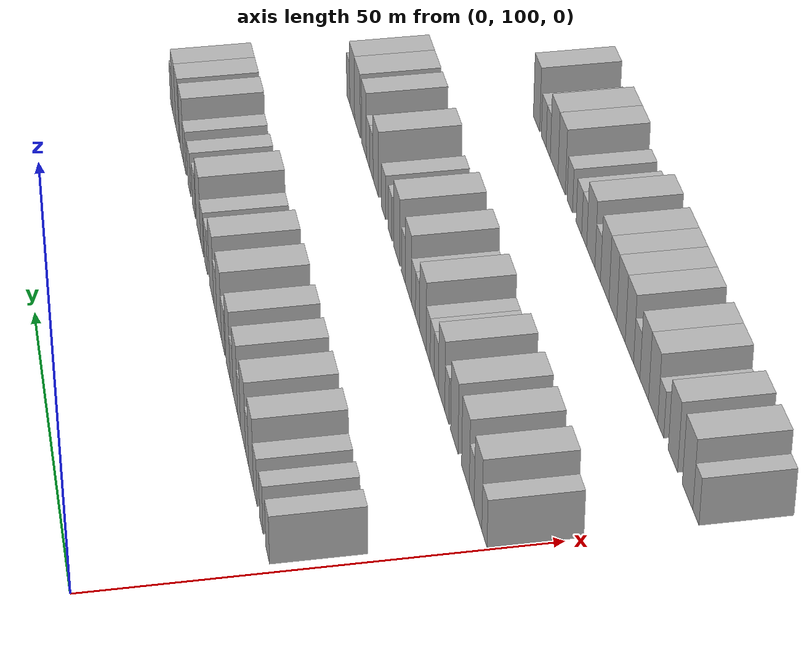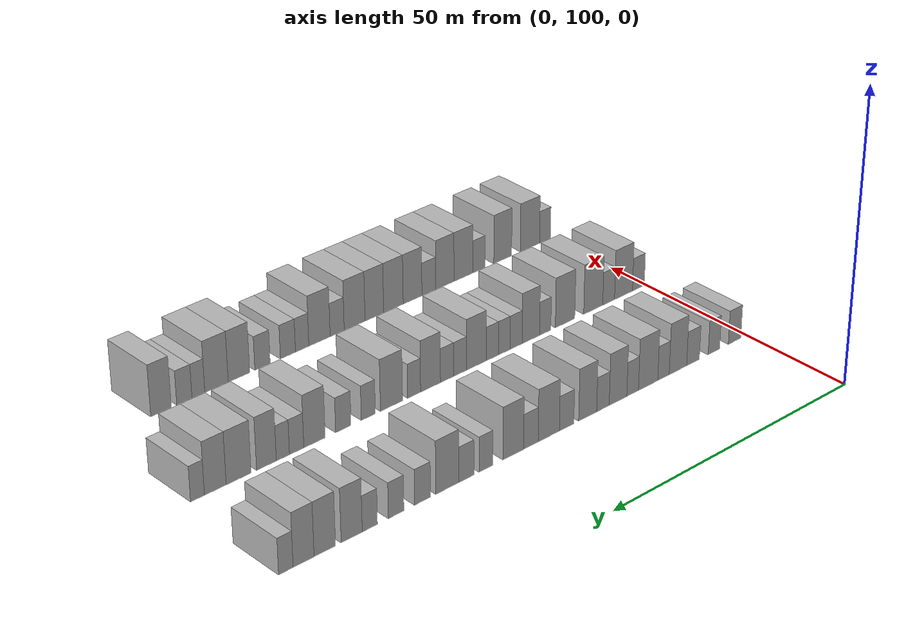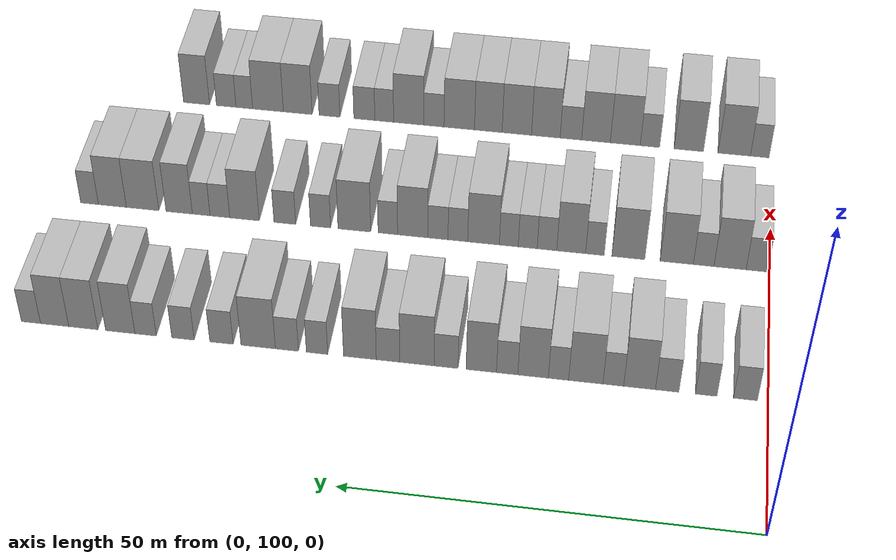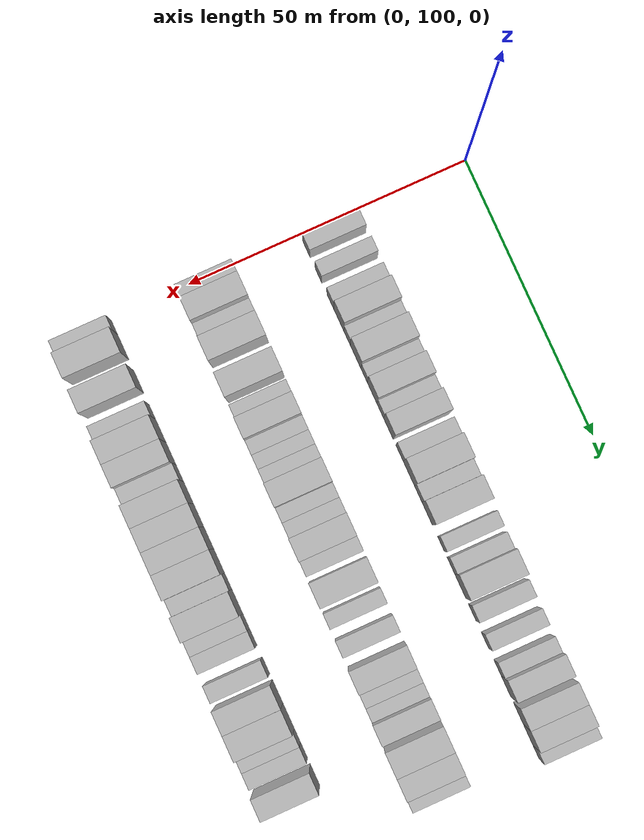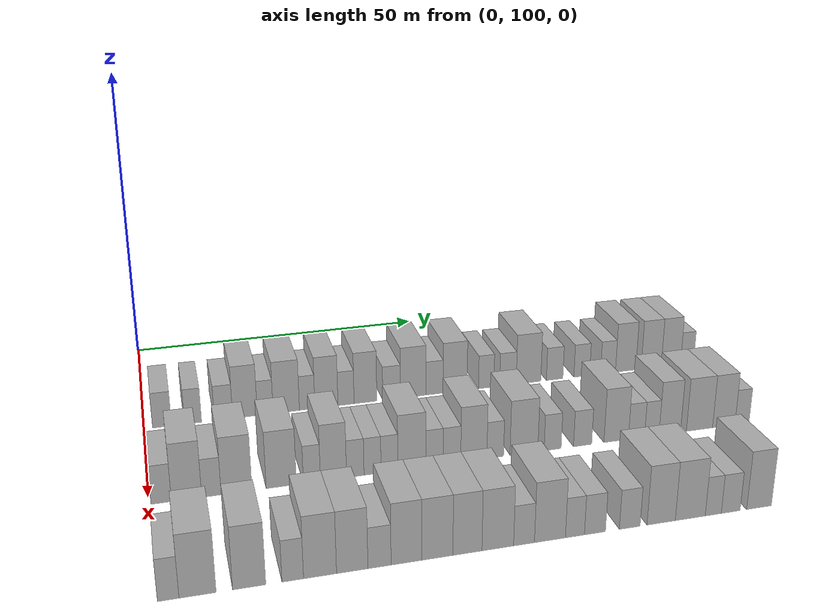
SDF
<sdf version="1.6">
 <world name="default">
  <model name="building_113">
   <static>1</static>
   <pose>25.0000 102.8025 0 0.000000 0.000000 0.000000</pose>
   <link name="link">
    <pose>0 0 3.00 0 0 0</pose>
    <collision name="collision"><geometry><box><size>10.0000 2.9003 6.0000</size></box></geometry></collision>
    <visual name="visual">
     <cast_shadows>0</cast_shadows>
     <geometry><box><size>10.0000 2.9003 6.0000</size></box></geometry>
     <material>
      <script>
       <uri>model://HANNAS_wall/materials/scripts</uri>
       <uri>model://HANNAS_wall/materials/textures</uri>
       <name>vrc/HANNAS_wall</name>
      </script>
     </material>
    </visual>
   </link>
  </model>
  <model name="building_114">
   <static>1</static>
   <pose>25.0000 107.5711 0 0.000000 0.000000 0.000000</pose>
   <link name="link">
    <pose>0 0 3.00 0 0 0</pose>
    <collision name="collision"><geometry><box><size>10.0000 2.6370 6.0000</size></box></geometry></collision>
    <visual name="visual">
     <cast_shadows>0</cast_shadows>
     <geometry><box><size>10.0000 2.6370 6.0000</size></box></geometry>
     <material>
      <script>
       <uri>model://HANNAS_wall/materials/scripts</uri>
       <uri>model://HANNAS_wall/materials/textures</uri>
       <name>vrc/HANNAS_wall</name>
      </script>
     </material>
    </visual>
   </link>
  </model>
  <model name="building_115">
   <static>1</static>
   <pose>25.0000 112.3245 0 0.000000 0.000000 0.000000</pose>
   <link name="link">
    <pose>0 0 3.00 0 0 0</pose>
    <collision name="collision"><geometry><box><size>10.0000 2.8697 6.0000</size></box></geometry></collision>
    <visual name="visual">
     <cast_shadows>0</cast_shadows>
     <geometry><box><size>10.0000 2.8697 6.0000</size></box></geometry>
     <material>
      <script>
       <uri>model://HANNAS_wall/materials/scripts</uri>
       <uri>model://HANNAS_wall/materials/textures</uri>
       <name>vrc/HANNAS_wall</name>
      </script>
     </material>
    </visual>
   </link>
  </model>
  <model name="building_116">
   <static>1</static>
   <pose>25.0000 115.7077 0 0.000000 0.000000 0.000000</pose>
   <link name="link">
    <pose>0 0 4.50 0 0 0</pose>
    <collision name="collision"><geometry><box><size>10.0000 3.8967 9.0000</size></box></geometry></collision>
    <visual name="visual">
     <cast_shadows>0</cast_shadows>
     <geometry><box><size>10.0000 3.8967 9.0000</size></box></geometry>
     <material>
      <script>
       <uri>model://HANNAS_wall/materials/scripts</uri>
       <uri>model://HANNAS_wall/materials/textures</uri>
       <name>vrc/HANNAS_wall</name>
      </script>
     </material>
    </visual>
   </link>
  </model>
  <model name="building_117">
   <static>1</static>
   <pose>25.0000 118.9206 0 0.000000 0.000000 0.000000</pose>
   <link name="link">
    <pose>0 0 3.00 0 0 0</pose>
    <collision name="collision"><geometry><box><size>10.0000 2.5292 6.0000</size></box></geometry></collision>
    <visual name="visual">
     <cast_shadows>0</cast_shadows>
     <geometry><box><size>10.0000 2.5292 6.0000</size></box></geometry>
     <material>
      <script>
       <uri>model://HANNAS_wall/materials/scripts</uri>
       <uri>model://HANNAS_wall/materials/textures</uri>
       <name>vrc/HANNAS_wall</name>
      </script>
     </material>
    </visual>
   </link>
  </model>
  <model name="building_118">
   <static>1</static>
   <pose>25.0000 122.2990 0 0.000000 0.000000 0.000000</pose>
   <link name="link">
    <pose>0 0 4.50 0 0 0</pose>
    <collision name="collision"><geometry><box><size>10.0000 4.2275 9.0000</size></box></geometry></collision>
    <visual name="visual">
     <cast_shadows>0</cast_shadows>
     <geometry><box><size>10.0000 4.2275 9.0000</size></box></geometry>
     <material>
      <script>
       <uri>model://HANNAS_wall/materials/scripts</uri>
       <uri>model://HANNAS_wall/materials/textures</uri>
       <name>vrc/HANNAS_wall</name>
      </script>
     </material>
    </visual>
   </link>
  </model>
  <model name="building_119">
   <static>1</static>
   <pose>25.0000 125.6656 0 0.000000 0.000000 0.000000</pose>
   <link name="link">
    <pose>0 0 3.00 0 0 0</pose>
    <collision name="collision"><geometry><box><size>10.0000 2.5059 6.0000</size></box></geometry></collision>
    <visual name="visual">
     <cast_shadows>0</cast_shadows>
     <geometry><box><size>10.0000 2.5059 6.0000</size></box></geometry>
     <material>
      <script>
       <uri>model://HANNAS_wall/materials/scripts</uri>
       <uri>model://HANNAS_wall/materials/textures</uri>
       <name>vrc/HANNAS_wall</name>
      </script>
     </material>
    </visual>
   </link>
  </model>
  <model name="building_120">
   <static>1</static>
   <pose>25.0000 128.8094 0 0.000000 0.000000 0.000000</pose>
   <link name="link">
    <pose>0 0 4.50 0 0 0</pose>
    <collision name="collision"><geometry><box><size>10.0000 3.7816 9.0000</size></box></geometry></collision>
    <visual name="visual">
     <cast_shadows>0</cast_shadows>
     <geometry><box><size>10.0000 3.7816 9.0000</size></box></geometry>
     <material>
      <script>
       <uri>model://HANNAS_wall/materials/scripts</uri>
       <uri>model://HANNAS_wall/materials/textures</uri>
       <name>vrc/HANNAS_wall</name>
      </script>
     </material>
    </visual>
   </link>
  </model>
  <model name="building_121">
   <static>1</static>
   <pose>25.0000 132.0284 0 0.000000 0.000000 0.000000</pose>
   <link name="link">
    <pose>0 0 3.00 0 0 0</pose>
    <collision name="collision"><geometry><box><size>10.0000 2.6565 6.0000</size></box></geometry></collision>
    <visual name="visual">
     <cast_shadows>0</cast_shadows>
     <geometry><box><size>10.0000 2.6565 6.0000</size></box></geometry>
     <material>
      <script>
       <uri>model://HANNAS_wall/materials/scripts</uri>
       <uri>model://HANNAS_wall/materials/textures</uri>
       <name>vrc/HANNAS_wall</name>
      </script>
     </material>
    </visual>
   </link>
  </model>
  <model name="building_122">
   <static>1</static>
   <pose>25.0000 135.2469 0 0.000000 0.000000 0.000000</pose>
   <link name="link">
    <pose>0 0 4.50 0 0 0</pose>
    <collision name="collision"><geometry><box><size>10.0000 3.7803 9.0000</size></box></geometry></collision>
    <visual name="visual">
     <cast_shadows>0</cast_shadows>
     <geometry><box><size>10.0000 3.7803 9.0000</size></box></geometry>
     <material>
      <script>
       <uri>model://HANNAS_wall/materials/scripts</uri>
       <uri>model://HANNAS_wall/materials/textures</uri>
       <name>vrc/HANNAS_wall</name>
      </script>
     </material>
    </visual>
   </link>
  </model>
  <model name="building_123">
   <static>1</static>
   <pose>25.0000 139.6315 0 0.000000 0.000000 0.000000</pose>
   <link name="link">
    <pose>0 0 3.00 0 0 0</pose>
    <collision name="collision"><geometry><box><size>10.0000 2.9890 6.0000</size></box></geometry></collision>
    <visual name="visual">
     <cast_shadows>0</cast_shadows>
     <geometry><box><size>10.0000 2.9890 6.0000</size></box></geometry>
     <material>
      <script>
       <uri>model://HANNAS_wall/materials/scripts</uri>
       <uri>model://HANNAS_wall/materials/textures</uri>
       <name>vrc/HANNAS_wall</name>
      </script>
     </material>
    </visual>
   </link>
  </model>
  <model name="building_124">
   <static>1</static>
   <pose>25.0000 143.2917 0 0.000000 0.000000 0.000000</pose>
   <link name="link">
    <pose>0 0 4.50 0 0 0</pose>
    <collision name="collision"><geometry><box><size>10.0000 4.3314 9.0000</size></box></geometry></collision>
    <visual name="visual">
     <cast_shadows>0</cast_shadows>
     <geometry><box><size>10.0000 4.3314 9.0000</size></box></geometry>
     <material>
      <script>
       <uri>model://HANNAS_wall/materials/scripts</uri>
       <uri>model://HANNAS_wall/materials/textures</uri>
       <name>vrc/HANNAS_wall</name>
      </script>
     </material>
    </visual>
   </link>
  </model>
  <model name="building_125">
   <static>1</static>
   <pose>25.0000 146.9244 0 0.000000 0.000000 0.000000</pose>
   <link name="link">
    <pose>0 0 3.00 0 0 0</pose>
    <collision name="collision"><geometry><box><size>10.0000 2.9341 6.0000</size></box></geometry></collision>
    <visual name="visual">
     <cast_shadows>0</cast_shadows>
     <geometry><box><size>10.0000 2.9341 6.0000</size></box></geometry>
     <material>
      <script>
       <uri>model://HANNAS_wall/materials/scripts</uri>
       <uri>model://HANNAS_wall/materials/textures</uri>
       <name>vrc/HANNAS_wall</name>
      </script>
     </material>
    </visual>
   </link>
  </model>
  <model name="building_126">
   <static>1</static>
   <pose>25.0000 150.4556 0 0.000000 0.000000 0.000000</pose>
   <link name="link">
    <pose>0 0 4.50 0 0 0</pose>
    <collision name="collision"><geometry><box><size>10.0000 4.1283 9.0000</size></box></geometry></collision>
    <visual name="visual">
     <cast_shadows>0</cast_shadows>
     <geometry><box><size>10.0000 4.1283 9.0000</size></box></geometry>
     <material>
      <script>
       <uri>model://HANNAS_wall/materials/scripts</uri>
       <uri>model://HANNAS_wall/materials/textures</uri>
       <name>vrc/HANNAS_wall</name>
      </script>
     </material>
    </visual>
   </link>
  </model>
  <model name="building_127">
   <static>1</static>
   <pose>25.0000 155.8726 0 0.000000 0.000000 0.000000</pose>
   <link name="link">
    <pose>0 0 3.00 0 0 0</pose>
    <collision name="collision"><geometry><box><size>10.0000 2.7057 6.0000</size></box></geometry></collision>
    <visual name="visual">
     <cast_shadows>0</cast_shadows>
     <geometry><box><size>10.0000 2.7057 6.0000</size></box></geometry>
     <material>
      <script>
       <uri>model://HANNAS_wall/materials/scripts</uri>
       <uri>model://HANNAS_wall/materials/textures</uri>
       <name>vrc/HANNAS_wall</name>
      </script>
     </material>
    </visual>
   </link>
  </model>
  <model name="building_128">
   <static>1</static>
   <pose>25.0000 159.6911 0 0.000000 0.000000 0.000000</pose>
   <link name="link">
    <pose>0 0 3.00 0 0 0</pose>
    <collision name="collision"><geometry><box><size>10.0000 2.9313 6.0000</size></box></geometry></collision>
    <visual name="visual">
     <cast_shadows>0</cast_shadows>
     <geometry><box><size>10.0000 2.9313 6.0000</size></box></geometry>
     <material>
      <script>
       <uri>model://HANNAS_wall/materials/scripts</uri>
       <uri>model://HANNAS_wall/materials/textures</uri>
       <name>vrc/HANNAS_wall</name>
      </script>
     </material>
    </visual>
   </link>
  </model>
  <model name="building_129">
   <static>1</static>
   <pose>25.0000 163.3527 0 0.000000 0.000000 0.000000</pose>
   <link name="link">
    <pose>0 0 4.50 0 0 0</pose>
    <collision name="collision"><geometry><box><size>10.0000 4.3920 9.0000</size></box></geometry></collision>
    <visual name="visual">
     <cast_shadows>0</cast_shadows>
     <geometry><box><size>10.0000 4.3920 9.0000</size></box></geometry>
     <material>
      <script>
       <uri>model://HANNAS_wall/materials/scripts</uri>
       <uri>model://HANNAS_wall/materials/textures</uri>
       <name>vrc/HANNAS_wall</name>
      </script>
     </material>
    </visual>
   </link>
  </model>
  <model name="building_130">
   <static>1</static>
   <pose>25.0000 168.0411 0 0.000000 0.000000 0.000000</pose>
   <link name="link">
    <pose>0 0 3.00 0 0 0</pose>
    <collision name="collision"><geometry><box><size>10.0000 2.9847 6.0000</size></box></geometry></collision>
    <visual name="visual">
     <cast_shadows>0</cast_shadows>
     <geometry><box><size>10.0000 2.9847 6.0000</size></box></geometry>
     <material>
      <script>
       <uri>model://HANNAS_wall/materials/scripts</uri>
       <uri>model://HANNAS_wall/materials/textures</uri>
       <name>vrc/HANNAS_wall</name>
      </script>
     </material>
    </visual>
   </link>
  </model>
  <model name="building_131">
   <static>1</static>
   <pose>25.0000 172.9706 0 0.000000 0.000000 0.000000</pose>
   <link name="link">
    <pose>0 0 3.00 0 0 0</pose>
    <collision name="collision"><geometry><box><size>10.0000 2.8743 6.0000</size></box></geometry></collision>
    <visual name="visual">
     <cast_shadows>0</cast_shadows>
     <geometry><box><size>10.0000 2.8743 6.0000</size></box></geometry>
     <material>
      <script>
       <uri>model://HANNAS_wall/materials/scripts</uri>
       <uri>model://HANNAS_wall/materials/textures</uri>
       <name>vrc/HANNAS_wall</name>
      </script>
     </material>
    </visual>
   </link>
  </model>
  <model name="building_132">
   <static>1</static>
   <pose>25.0000 177.7892 0 0.000000 0.000000 0.000000</pose>
   <link name="link">
    <pose>0 0 3.00 0 0 0</pose>
    <collision name="collision"><geometry><box><size>10.0000 2.7629 6.0000</size></box></geometry></collision>
    <visual name="visual">
     <cast_shadows>0</cast_shadows>
     <geometry><box><size>10.0000 2.7629 6.0000</size></box></geometry>
     <material>
      <script>
       <uri>model://HANNAS_wall/materials/scripts</uri>
       <uri>model://HANNAS_wall/materials/textures</uri>
       <name>vrc/HANNAS_wall</name>
      </script>
     </material>
    </visual>
   </link>
  </model>
  <model name="building_133">
   <static>1</static>
   <pose>25.0000 181.0707 0 0.000000 0.000000 0.000000</pose>
   <link name="link">
    <pose>0 0 4.50 0 0 0</pose>
    <collision name="collision"><geometry><box><size>10.0000 3.8002 9.0000</size></box></geometry></collision>
    <visual name="visual">
     <cast_shadows>0</cast_shadows>
     <geometry><box><size>10.0000 3.8002 9.0000</size></box></geometry>
     <material>
      <script>
       <uri>model://HANNAS_wall/materials/scripts</uri>
       <uri>model://HANNAS_wall/materials/textures</uri>
       <name>vrc/HANNAS_wall</name>
      </script>
     </material>
    </visual>
   </link>
  </model>
  <model name="building_134">
   <static>1</static>
   <pose>25.0000 185.8647 0 0.000000 0.000000 0.000000</pose>
   <link name="link">
    <pose>0 0 4.50 0 0 0</pose>
    <collision name="collision"><geometry><box><size>10.0000 3.7878 9.0000</size></box></geometry></collision>
    <visual name="visual">
     <cast_shadows>0</cast_shadows>
     <geometry><box><size>10.0000 3.7878 9.0000</size></box></geometry>
     <material>
      <script>
       <uri>model://HANNAS_wall/materials/scripts</uri>
       <uri>model://HANNAS_wall/materials/textures</uri>
       <name>vrc/HANNAS_wall</name>
      </script>
     </material>
    </visual>
   </link>
  </model>
  <model name="building_135">
   <static>1</static>
   <pose>25.0000 189.5928 0 0.000000 0.000000 0.000000</pose>
   <link name="link">
    <pose>0 0 4.50 0 0 0</pose>
    <collision name="collision"><geometry><box><size>10.0000 3.6683 9.0000</size></box></geometry></collision>
    <visual name="visual">
     <cast_shadows>0</cast_shadows>
     <geometry><box><size>10.0000 3.6683 9.0000</size></box></geometry>
     <material>
      <script>
       <uri>model://HANNAS_wall/materials/scripts</uri>
       <uri>model://HANNAS_wall/materials/textures</uri>
       <name>vrc/HANNAS_wall</name>
      </script>
     </material>
    </visual>
   </link>
  </model>
  <model name="building_136">
   <static>1</static>
   <pose>25.0000 192.6796 0 0.000000 0.000000 0.000000</pose>
   <link name="link">
    <pose>0 0 3.00 0 0 0</pose>
    <collision name="collision"><geometry><box><size>10.0000 2.5054 6.0000</size></box></geometry></collision>
    <visual name="visual">
     <cast_shadows>0</cast_shadows>
     <geometry><box><size>10.0000 2.5054 6.0000</size></box></geometry>
     <material>
      <script>
       <uri>model://HANNAS_wall/materials/scripts</uri>
       <uri>model://HANNAS_wall/materials/textures</uri>
       <name>vrc/HANNAS_wall</name>
      </script>
     </material>
    </visual>
   </link>
  </model>
  <model name="building_299">
   <static>1</static>
   <pose>47.0000 101.7221 0 0.000000 0.000000 0.000000</pose>
   <link name="link">
    <pose>0 0 3.00 0 0 0</pose>
    <collision name="collision"><geometry><box><size>10.0000 2.7694 6.0000</size></box></geometry></collision>
    <visual name="visual">
     <cast_shadows>0</cast_shadows>
     <geometry><box><size>10.0000 2.7694 6.0000</size></box></geometry>
     <material>
      <script>
       <uri>model://HANNAS_wall/materials/scripts</uri>
       <uri>model://HANNAS_wall/materials/textures</uri>
       <name>vrc/HANNAS_wall</name>
      </script>
     </material>
    </visual>
   </link>
  </model>
  <model name="building_300">
   <static>1</static>
   <pose>47.0000 105.1840 0 0.000000 0.000000 0.000000</pose>
   <link name="link">
    <pose>0 0 4.50 0 0 0</pose>
    <collision name="collision"><geometry><box><size>10.0000 4.1545 9.0000</size></box></geometry></collision>
    <visual name="visual">
     <cast_shadows>0</cast_shadows>
     <geometry><box><size>10.0000 4.1545 9.0000</size></box></geometry>
     <material>
      <script>
       <uri>model://HANNAS_wall/materials/scripts</uri>
       <uri>model://HANNAS_wall/materials/textures</uri>
       <name>vrc/HANNAS_wall</name>
      </script>
     </material>
    </visual>
   </link>
  </model>
  <model name="building_301">
   <static>1</static>
   <pose>47.0000 108.6056 0 0.000000 0.000000 0.000000</pose>
   <link name="link">
    <pose>0 0 3.00 0 0 0</pose>
    <collision name="collision"><geometry><box><size>10.0000 2.6887 6.0000</size></box></geometry></collision>
    <visual name="visual">
     <cast_shadows>0</cast_shadows>
     <geometry><box><size>10.0000 2.6887 6.0000</size></box></geometry>
     <material>
      <script>
       <uri>model://HANNAS_wall/materials/scripts</uri>
       <uri>model://HANNAS_wall/materials/textures</uri>
       <name>vrc/HANNAS_wall</name>
      </script>
     </material>
    </visual>
   </link>
  </model>
  <model name="building_302">
   <static>1</static>
   <pose>47.0000 112.1051 0 0.000000 0.000000 0.000000</pose>
   <link name="link">
    <pose>0 0 4.50 0 0 0</pose>
    <collision name="collision"><geometry><box><size>10.0000 4.3103 9.0000</size></box></geometry></collision>
    <visual name="visual">
     <cast_shadows>0</cast_shadows>
     <geometry><box><size>10.0000 4.3103 9.0000</size></box></geometry>
     <material>
      <script>
       <uri>model://HANNAS_wall/materials/scripts</uri>
       <uri>model://HANNAS_wall/materials/textures</uri>
       <name>vrc/HANNAS_wall</name>
      </script>
     </material>
    </visual>
   </link>
  </model>
  <model name="building_303">
   <static>1</static>
   <pose>47.0000 118.4166 0 0.000000 0.000000 0.000000</pose>
   <link name="link">
    <pose>0 0 4.50 0 0 0</pose>
    <collision name="collision"><geometry><box><size>10.0000 4.3128 9.0000</size></box></geometry></collision>
    <visual name="visual">
     <cast_shadows>0</cast_shadows>
     <geometry><box><size>10.0000 4.3128 9.0000</size></box></geometry>
     <material>
      <script>
       <uri>model://HANNAS_wall/materials/scripts</uri>
       <uri>model://HANNAS_wall/materials/textures</uri>
       <name>vrc/HANNAS_wall</name>
      </script>
     </material>
    </visual>
   </link>
  </model>
  <model name="building_304">
   <static>1</static>
   <pose>47.0000 122.8000 0 0.000000 0.000000 0.000000</pose>
   <link name="link">
    <pose>0 0 3.00 0 0 0</pose>
    <collision name="collision"><geometry><box><size>10.0000 2.4539 6.0000</size></box></geometry></collision>
    <visual name="visual">
     <cast_shadows>0</cast_shadows>
     <geometry><box><size>10.0000 2.4539 6.0000</size></box></geometry>
     <material>
      <script>
       <uri>model://HANNAS_wall/materials/scripts</uri>
       <uri>model://HANNAS_wall/materials/textures</uri>
       <name>vrc/HANNAS_wall</name>
      </script>
     </material>
    </visual>
   </link>
  </model>
  <model name="building_305">
   <static>1</static>
   <pose>47.0000 125.9238 0 0.000000 0.000000 0.000000</pose>
   <link name="link">
    <pose>0 0 4.50 0 0 0</pose>
    <collision name="collision"><geometry><box><size>10.0000 3.7936 9.0000</size></box></geometry></collision>
    <visual name="visual">
     <cast_shadows>0</cast_shadows>
     <geometry><box><size>10.0000 3.7936 9.0000</size></box></geometry>
     <material>
      <script>
       <uri>model://HANNAS_wall/materials/scripts</uri>
       <uri>model://HANNAS_wall/materials/textures</uri>
       <name>vrc/HANNAS_wall</name>
      </script>
     </material>
    </visual>
   </link>
  </model>
  <model name="building_306">
   <static>1</static>
   <pose>47.0000 129.1072 0 0.000000 0.000000 0.000000</pose>
   <link name="link">
    <pose>0 0 3.00 0 0 0</pose>
    <collision name="collision"><geometry><box><size>10.0000 2.5732 6.0000</size></box></geometry></collision>
    <visual name="visual">
     <cast_shadows>0</cast_shadows>
     <geometry><box><size>10.0000 2.5732 6.0000</size></box></geometry>
     <material>
      <script>
       <uri>model://HANNAS_wall/materials/scripts</uri>
       <uri>model://HANNAS_wall/materials/textures</uri>
       <name>vrc/HANNAS_wall</name>
      </script>
     </material>
    </visual>
   </link>
  </model>
  <model name="building_307">
   <static>1</static>
   <pose>47.0000 131.6514 0 0.000000 0.000000 0.000000</pose>
   <link name="link">
    <pose>0 0 3.00 0 0 0</pose>
    <collision name="collision"><geometry><box><size>10.0000 2.5152 6.0000</size></box></geometry></collision>
    <visual name="visual">
     <cast_shadows>0</cast_shadows>
     <geometry><box><size>10.0000 2.5152 6.0000</size></box></geometry>
     <material>
      <script>
       <uri>model://HANNAS_wall/materials/scripts</uri>
       <uri>model://HANNAS_wall/materials/textures</uri>
       <name>vrc/HANNAS_wall</name>
      </script>
     </material>
    </visual>
   </link>
  </model>
  <model name="building_308">
   <static>1</static>
   <pose>47.0000 134.1628 0 0.000000 0.000000 0.000000</pose>
   <link name="link">
    <pose>0 0 3.00 0 0 0</pose>
    <collision name="collision"><geometry><box><size>10.0000 2.5076 6.0000</size></box></geometry></collision>
    <visual name="visual">
     <cast_shadows>0</cast_shadows>
     <geometry><box><size>10.0000 2.5076 6.0000</size></box></geometry>
     <material>
      <script>
       <uri>model://HANNAS_wall/materials/scripts</uri>
       <uri>model://HANNAS_wall/materials/textures</uri>
       <name>vrc/HANNAS_wall</name>
      </script>
     </material>
    </visual>
   </link>
  </model>
  <model name="building_309">
   <static>1</static>
   <pose>47.0000 137.5191 0 0.000000 0.000000 0.000000</pose>
   <link name="link">
    <pose>0 0 4.50 0 0 0</pose>
    <collision name="collision"><geometry><box><size>10.0000 4.2050 9.0000</size></box></geometry></collision>
    <visual name="visual">
     <cast_shadows>0</cast_shadows>
     <geometry><box><size>10.0000 4.2050 9.0000</size></box></geometry>
     <material>
      <script>
       <uri>model://HANNAS_wall/materials/scripts</uri>
       <uri>model://HANNAS_wall/materials/textures</uri>
       <name>vrc/HANNAS_wall</name>
      </script>
     </material>
    </visual>
   </link>
  </model>
  <model name="building_310">
   <static>1</static>
   <pose>47.0000 140.9337 0 0.000000 0.000000 0.000000</pose>
   <link name="link">
    <pose>0 0 3.00 0 0 0</pose>
    <collision name="collision"><geometry><box><size>10.0000 2.6243 6.0000</size></box></geometry></collision>
    <visual name="visual">
     <cast_shadows>0</cast_shadows>
     <geometry><box><size>10.0000 2.6243 6.0000</size></box></geometry>
     <material>
      <script>
       <uri>model://HANNAS_wall/materials/scripts</uri>
       <uri>model://HANNAS_wall/materials/textures</uri>
       <name>vrc/HANNAS_wall</name>
      </script>
     </material>
    </visual>
   </link>
  </model>
  <model name="building_311">
   <static>1</static>
   <pose>47.0000 143.6016 0 0.000000 0.000000 0.000000</pose>
   <link name="link">
    <pose>0 0 3.00 0 0 0</pose>
    <collision name="collision"><geometry><box><size>10.0000 2.7115 6.0000</size></box></geometry></collision>
    <visual name="visual">
     <cast_shadows>0</cast_shadows>
     <geometry><box><size>10.0000 2.7115 6.0000</size></box></geometry>
     <material>
      <script>
       <uri>model://HANNAS_wall/materials/scripts</uri>
       <uri>model://HANNAS_wall/materials/textures</uri>
       <name>vrc/HANNAS_wall</name>
      </script>
     </material>
    </visual>
   </link>
  </model>
  <model name="building_312">
   <static>1</static>
   <pose>47.0000 146.9746 0 0.000000 0.000000 0.000000</pose>
   <link name="link">
    <pose>0 0 4.50 0 0 0</pose>
    <collision name="collision"><geometry><box><size>10.0000 4.0344 9.0000</size></box></geometry></collision>
    <visual name="visual">
     <cast_shadows>0</cast_shadows>
     <geometry><box><size>10.0000 4.0344 9.0000</size></box></geometry>
     <material>
      <script>
       <uri>model://HANNAS_wall/materials/scripts</uri>
       <uri>model://HANNAS_wall/materials/textures</uri>
       <name>vrc/HANNAS_wall</name>
      </script>
     </material>
    </visual>
   </link>
  </model>
  <model name="building_313">
   <static>1</static>
   <pose>47.0000 150.2971 0 0.000000 0.000000 0.000000</pose>
   <link name="link">
    <pose>0 0 3.00 0 0 0</pose>
    <collision name="collision"><geometry><box><size>10.0000 2.6107 6.0000</size></box></geometry></collision>
    <visual name="visual">
     <cast_shadows>0</cast_shadows>
     <geometry><box><size>10.0000 2.6107 6.0000</size></box></geometry>
     <material>
      <script>
       <uri>model://HANNAS_wall/materials/scripts</uri>
       <uri>model://HANNAS_wall/materials/textures</uri>
       <name>vrc/HANNAS_wall</name>
      </script>
     </material>
    </visual>
   </link>
  </model>
  <model name="building_314">
   <static>1</static>
   <pose>47.0000 154.8010 0 0.000000 0.000000 0.000000</pose>
   <link name="link">
    <pose>0 0 4.50 0 0 0</pose>
    <collision name="collision"><geometry><box><size>10.0000 4.3969 9.0000</size></box></geometry></collision>
    <visual name="visual">
     <cast_shadows>0</cast_shadows>
     <geometry><box><size>10.0000 4.3969 9.0000</size></box></geometry>
     <material>
      <script>
       <uri>model://HANNAS_wall/materials/scripts</uri>
       <uri>model://HANNAS_wall/materials/textures</uri>
       <name>vrc/HANNAS_wall</name>
      </script>
     </material>
    </visual>
   </link>
  </model>
  <model name="building_315">
   <static>1</static>
   <pose>47.0000 159.3614 0 0.000000 0.000000 0.000000</pose>
   <link name="link">
    <pose>0 0 3.00 0 0 0</pose>
    <collision name="collision"><geometry><box><size>10.0000 2.7241 6.0000</size></box></geometry></collision>
    <visual name="visual">
     <cast_shadows>0</cast_shadows>
     <geometry><box><size>10.0000 2.7241 6.0000</size></box></geometry>
     <material>
      <script>
       <uri>model://HANNAS_wall/materials/scripts</uri>
       <uri>model://HANNAS_wall/materials/textures</uri>
       <name>vrc/HANNAS_wall</name>
      </script>
     </material>
    </visual>
   </link>
  </model>
  <model name="building_316">
   <static>1</static>
   <pose>47.0000 164.1989 0 0.000000 0.000000 0.000000</pose>
   <link name="link">
    <pose>0 0 3.00 0 0 0</pose>
    <collision name="collision"><geometry><box><size>10.0000 2.9508 6.0000</size></box></geometry></collision>
    <visual name="visual">
     <cast_shadows>0</cast_shadows>
     <geometry><box><size>10.0000 2.9508 6.0000</size></box></geometry>
     <material>
      <script>
       <uri>model://HANNAS_wall/materials/scripts</uri>
       <uri>model://HANNAS_wall/materials/textures</uri>
       <name>vrc/HANNAS_wall</name>
      </script>
     </material>
    </visual>
   </link>
  </model>
  <model name="building_317">
   <static>1</static>
   <pose>47.0000 169.6849 0 0.000000 0.000000 0.000000</pose>
   <link name="link">
    <pose>0 0 4.50 0 0 0</pose>
    <collision name="collision"><geometry><box><size>10.0000 4.0211 9.0000</size></box></geometry></collision>
    <visual name="visual">
     <cast_shadows>0</cast_shadows>
     <geometry><box><size>10.0000 4.0211 9.0000</size></box></geometry>
     <material>
      <script>
       <uri>model://HANNAS_wall/materials/scripts</uri>
       <uri>model://HANNAS_wall/materials/textures</uri>
       <name>vrc/HANNAS_wall</name>
      </script>
     </material>
    </visual>
   </link>
  </model>
  <model name="building_318">
   <static>1</static>
   <pose>47.0000 173.0404 0 0.000000 0.000000 0.000000</pose>
   <link name="link">
    <pose>0 0 3.00 0 0 0</pose>
    <collision name="collision"><geometry><box><size>10.0000 2.6899 6.0000</size></box></geometry></collision>
    <visual name="visual">
     <cast_shadows>0</cast_shadows>
     <geometry><box><size>10.0000 2.6899 6.0000</size></box></geometry>
     <material>
      <script>
       <uri>model://HANNAS_wall/materials/scripts</uri>
       <uri>model://HANNAS_wall/materials/textures</uri>
       <name>vrc/HANNAS_wall</name>
      </script>
     </material>
    </visual>
   </link>
  </model>
  <model name="building_319">
   <static>1</static>
   <pose>47.0000 175.5975 0 0.000000 0.000000 0.000000</pose>
   <link name="link">
    <pose>0 0 3.00 0 0 0</pose>
    <collision name="collision"><geometry><box><size>10.0000 2.4243 6.0000</size></box></geometry></collision>
    <visual name="visual">
     <cast_shadows>0</cast_shadows>
     <geometry><box><size>10.0000 2.4243 6.0000</size></box></geometry>
     <material>
      <script>
       <uri>model://HANNAS_wall/materials/scripts</uri>
       <uri>model://HANNAS_wall/materials/textures</uri>
       <name>vrc/HANNAS_wall</name>
      </script>
     </material>
    </visual>
   </link>
  </model>
  <model name="building_320">
   <static>1</static>
   <pose>47.0000 178.6188 0 0.000000 0.000000 0.000000</pose>
   <link name="link">
    <pose>0 0 4.50 0 0 0</pose>
    <collision name="collision"><geometry><box><size>10.0000 3.6183 9.0000</size></box></geometry></collision>
    <visual name="visual">
     <cast_shadows>0</cast_shadows>
     <geometry><box><size>10.0000 3.6183 9.0000</size></box></geometry>
     <material>
      <script>
       <uri>model://HANNAS_wall/materials/scripts</uri>
       <uri>model://HANNAS_wall/materials/textures</uri>
       <name>vrc/HANNAS_wall</name>
      </script>
     </material>
    </visual>
   </link>
  </model>
  <model name="building_321">
   <static>1</static>
   <pose>47.0000 183.6666 0 0.000000 0.000000 0.000000</pose>
   <link name="link">
    <pose>0 0 4.50 0 0 0</pose>
    <collision name="collision"><geometry><box><size>10.0000 4.4773 9.0000</size></box></geometry></collision>
    <visual name="visual">
     <cast_shadows>0</cast_shadows>
     <geometry><box><size>10.0000 4.4773 9.0000</size></box></geometry>
     <material>
      <script>
       <uri>model://HANNAS_wall/materials/scripts</uri>
       <uri>model://HANNAS_wall/materials/textures</uri>
       <name>vrc/HANNAS_wall</name>
      </script>
     </material>
    </visual>
   </link>
  </model>
  <model name="building_322">
   <static>1</static>
   <pose>47.0000 187.8374 0 0.000000 0.000000 0.000000</pose>
   <link name="link">
    <pose>0 0 4.50 0 0 0</pose>
    <collision name="collision"><geometry><box><size>10.0000 3.8642 9.0000</size></box></geometry></collision>
    <visual name="visual">
     <cast_shadows>0</cast_shadows>
     <geometry><box><size>10.0000 3.8642 9.0000</size></box></geometry>
     <material>
      <script>
       <uri>model://HANNAS_wall/materials/scripts</uri>
       <uri>model://HANNAS_wall/materials/textures</uri>
       <name>vrc/HANNAS_wall</name>
      </script>
     </material>
    </visual>
   </link>
  </model>
  <model name="building_323">
   <static>1</static>
   <pose>47.0000 190.9953 0 0.000000 0.000000 0.000000</pose>
   <link name="link">
    <pose>0 0 3.00 0 0 0</pose>
    <collision name="collision"><geometry><box><size>10.0000 2.4517 6.0000</size></box></geometry></collision>
    <visual name="visual">
     <cast_shadows>0</cast_shadows>
     <geometry><box><size>10.0000 2.4517 6.0000</size></box></geometry>
     <material>
      <script>
       <uri>model://HANNAS_wall/materials/scripts</uri>
       <uri>model://HANNAS_wall/materials/textures</uri>
       <name>vrc/HANNAS_wall</name>
      </script>
     </material>
    </visual>
   </link>
  </model>
  <model name="building_492">
   <static>1</static>
   <pose>69.0000 101.5935 0 0.000000 0.000000 0.000000</pose>
   <link name="link">
    <pose>0 0 3.00 0 0 0</pose>
    <collision name="collision"><geometry><box><size>10.0000 2.5586 6.0000</size></box></geometry></collision>
    <visual name="visual">
     <cast_shadows>0</cast_shadows>
     <geometry><box><size>10.0000 2.5586 6.0000</size></box></geometry>
     <material>
      <script>
       <uri>model://HANNAS_wall/materials/scripts</uri>
       <uri>model://HANNAS_wall/materials/textures</uri>
       <name>vrc/HANNAS_wall</name>
      </script>
     </material>
    </visual>
   </link>
  </model>
  <model name="building_493">
   <static>1</static>
   <pose>69.0000 105.1028 0 0.000000 0.000000 0.000000</pose>
   <link name="link">
    <pose>0 0 4.50 0 0 0</pose>
    <collision name="collision"><geometry><box><size>10.0000 4.4598 9.0000</size></box></geometry></collision>
    <visual name="visual">
     <cast_shadows>0</cast_shadows>
     <geometry><box><size>10.0000 4.4598 9.0000</size></box></geometry>
     <material>
      <script>
       <uri>model://HANNAS_wall/materials/scripts</uri>
       <uri>model://HANNAS_wall/materials/textures</uri>
       <name>vrc/HANNAS_wall</name>
      </script>
     </material>
    </visual>
   </link>
  </model>
  <model name="building_494">
   <static>1</static>
   <pose>69.0000 111.3676 0 0.000000 0.000000 0.000000</pose>
   <link name="link">
    <pose>0 0 4.50 0 0 0</pose>
    <collision name="collision"><geometry><box><size>10.0000 4.0698 9.0000</size></box></geometry></collision>
    <visual name="visual">
     <cast_shadows>0</cast_shadows>
     <geometry><box><size>10.0000 4.0698 9.0000</size></box></geometry>
     <material>
      <script>
       <uri>model://HANNAS_wall/materials/scripts</uri>
       <uri>model://HANNAS_wall/materials/textures</uri>
       <name>vrc/HANNAS_wall</name>
      </script>
     </material>
    </visual>
   </link>
  </model>
  <model name="building_495">
   <static>1</static>
   <pose>69.0000 116.7498 0 0.000000 0.000000 0.000000</pose>
   <link name="link">
    <pose>0 0 3.00 0 0 0</pose>
    <collision name="collision"><geometry><box><size>10.0000 2.6946 6.0000</size></box></geometry></collision>
    <visual name="visual">
     <cast_shadows>0</cast_shadows>
     <geometry><box><size>10.0000 2.6946 6.0000</size></box></geometry>
     <material>
      <script>
       <uri>model://HANNAS_wall/materials/scripts</uri>
       <uri>model://HANNAS_wall/materials/textures</uri>
       <name>vrc/HANNAS_wall</name>
      </script>
     </material>
    </visual>
   </link>
  </model>
  <model name="building_496">
   <static>1</static>
   <pose>69.0000 120.1810 0 0.000000 0.000000 0.000000</pose>
   <link name="link">
    <pose>0 0 4.50 0 0 0</pose>
    <collision name="collision"><geometry><box><size>10.0000 4.1678 9.0000</size></box></geometry></collision>
    <visual name="visual">
     <cast_shadows>0</cast_shadows>
     <geometry><box><size>10.0000 4.1678 9.0000</size></box></geometry>
     <material>
      <script>
       <uri>model://HANNAS_wall/materials/scripts</uri>
       <uri>model://HANNAS_wall/materials/textures</uri>
       <name>vrc/HANNAS_wall</name>
      </script>
     </material>
    </visual>
   </link>
  </model>
  <model name="building_497">
   <static>1</static>
   <pose>69.0000 124.2725 0 0.000000 0.000000 0.000000</pose>
   <link name="link">
    <pose>0 0 4.50 0 0 0</pose>
    <collision name="collision"><geometry><box><size>10.0000 4.0152 9.0000</size></box></geometry></collision>
    <visual name="visual">
     <cast_shadows>0</cast_shadows>
     <geometry><box><size>10.0000 4.0152 9.0000</size></box></geometry>
     <material>
      <script>
       <uri>model://HANNAS_wall/materials/scripts</uri>
       <uri>model://HANNAS_wall/materials/textures</uri>
       <name>vrc/HANNAS_wall</name>
      </script>
     </material>
    </visual>
   </link>
  </model>
  <model name="building_498">
   <static>1</static>
   <pose>69.0000 127.7796 0 0.000000 0.000000 0.000000</pose>
   <link name="link">
    <pose>0 0 3.00 0 0 0</pose>
    <collision name="collision"><geometry><box><size>10.0000 2.9990 6.0000</size></box></geometry></collision>
    <visual name="visual">
     <cast_shadows>0</cast_shadows>
     <geometry><box><size>10.0000 2.9990 6.0000</size></box></geometry>
     <material>
      <script>
       <uri>model://HANNAS_wall/materials/scripts</uri>
       <uri>model://HANNAS_wall/materials/textures</uri>
       <name>vrc/HANNAS_wall</name>
      </script>
     </material>
    </visual>
   </link>
  </model>
  <model name="building_499">
   <static>1</static>
   <pose>69.0000 131.2881 0 0.000000 0.000000 0.000000</pose>
   <link name="link">
    <pose>0 0 4.50 0 0 0</pose>
    <collision name="collision"><geometry><box><size>10.0000 4.0180 9.0000</size></box></geometry></collision>
    <visual name="visual">
     <cast_shadows>0</cast_shadows>
     <geometry><box><size>10.0000 4.0180 9.0000</size></box></geometry>
     <material>
      <script>
       <uri>model://HANNAS_wall/materials/scripts</uri>
       <uri>model://HANNAS_wall/materials/textures</uri>
       <name>vrc/HANNAS_wall</name>
      </script>
     </material>
    </visual>
   </link>
  </model>
  <model name="building_500">
   <static>1</static>
   <pose>69.0000 135.3646 0 0.000000 0.000000 0.000000</pose>
   <link name="link">
    <pose>0 0 4.50 0 0 0</pose>
    <collision name="collision"><geometry><box><size>10.0000 4.1349 9.0000</size></box></geometry></collision>
    <visual name="visual">
     <cast_shadows>0</cast_shadows>
     <geometry><box><size>10.0000 4.1349 9.0000</size></box></geometry>
     <material>
      <script>
       <uri>model://HANNAS_wall/materials/scripts</uri>
       <uri>model://HANNAS_wall/materials/textures</uri>
       <name>vrc/HANNAS_wall</name>
      </script>
     </material>
    </visual>
   </link>
  </model>
  <model name="building_501">
   <static>1</static>
   <pose>69.0000 139.3854 0 0.000000 0.000000 0.000000</pose>
   <link name="link">
    <pose>0 0 4.50 0 0 0</pose>
    <collision name="collision"><geometry><box><size>10.0000 3.9067 9.0000</size></box></geometry></collision>
    <visual name="visual">
     <cast_shadows>0</cast_shadows>
     <geometry><box><size>10.0000 3.9067 9.0000</size></box></geometry>
     <material>
      <script>
       <uri>model://HANNAS_wall/materials/scripts</uri>
       <uri>model://HANNAS_wall/materials/textures</uri>
       <name>vrc/HANNAS_wall</name>
      </script>
     </material>
    </visual>
   </link>
  </model>
  <model name="building_502">
   <static>1</static>
   <pose>69.0000 143.4951 0 0.000000 0.000000 0.000000</pose>
   <link name="link">
    <pose>0 0 4.50 0 0 0</pose>
    <collision name="collision"><geometry><box><size>10.0000 4.3128 9.0000</size></box></geometry></collision>
    <visual name="visual">
     <cast_shadows>0</cast_shadows>
     <geometry><box><size>10.0000 4.3128 9.0000</size></box></geometry>
     <material>
      <script>
       <uri>model://HANNAS_wall/materials/scripts</uri>
       <uri>model://HANNAS_wall/materials/textures</uri>
       <name>vrc/HANNAS_wall</name>
      </script>
     </material>
    </visual>
   </link>
  </model>
  <model name="building_503">
   <static>1</static>
   <pose>69.0000 147.0904 0 0.000000 0.000000 0.000000</pose>
   <link name="link">
    <pose>0 0 3.00 0 0 0</pose>
    <collision name="collision"><geometry><box><size>10.0000 2.8777 6.0000</size></box></geometry></collision>
    <visual name="visual">
     <cast_shadows>0</cast_shadows>
     <geometry><box><size>10.0000 2.8777 6.0000</size></box></geometry>
     <material>
      <script>
       <uri>model://HANNAS_wall/materials/scripts</uri>
       <uri>model://HANNAS_wall/materials/textures</uri>
       <name>vrc/HANNAS_wall</name>
      </script>
     </material>
    </visual>
   </link>
  </model>
  <model name="building_504">
   <static>1</static>
   <pose>69.0000 150.6858 0 0.000000 0.000000 0.000000</pose>
   <link name="link">
    <pose>0 0 4.50 0 0 0</pose>
    <collision name="collision"><geometry><box><size>10.0000 4.3131 9.0000</size></box></geometry></collision>
    <visual name="visual">
     <cast_shadows>0</cast_shadows>
     <geometry><box><size>10.0000 4.3131 9.0000</size></box></geometry>
     <material>
      <script>
       <uri>model://HANNAS_wall/materials/scripts</uri>
       <uri>model://HANNAS_wall/materials/textures</uri>
       <name>vrc/HANNAS_wall</name>
      </script>
     </material>
    </visual>
   </link>
  </model>
  <model name="building_505">
   <static>1</static>
   <pose>69.0000 154.1803 0 0.000000 0.000000 0.000000</pose>
   <link name="link">
    <pose>0 0 3.00 0 0 0</pose>
    <collision name="collision"><geometry><box><size>10.0000 2.6759 6.0000</size></box></geometry></collision>
    <visual name="visual">
     <cast_shadows>0</cast_shadows>
     <geometry><box><size>10.0000 2.6759 6.0000</size></box></geometry>
     <material>
      <script>
       <uri>model://HANNAS_wall/materials/scripts</uri>
       <uri>model://HANNAS_wall/materials/textures</uri>
       <name>vrc/HANNAS_wall</name>
      </script>
     </material>
    </visual>
   </link>
  </model>
  <model name="building_506">
   <static>1</static>
   <pose>69.0000 157.0149 0 0.000000 0.000000 0.000000</pose>
   <link name="link">
    <pose>0 0 3.00 0 0 0</pose>
    <collision name="collision"><geometry><box><size>10.0000 2.9934 6.0000</size></box></geometry></collision>
    <visual name="visual">
     <cast_shadows>0</cast_shadows>
     <geometry><box><size>10.0000 2.9934 6.0000</size></box></geometry>
     <material>
      <script>
       <uri>model://HANNAS_wall/materials/scripts</uri>
       <uri>model://HANNAS_wall/materials/textures</uri>
       <name>vrc/HANNAS_wall</name>
      </script>
     </material>
    </visual>
   </link>
  </model>
  <model name="building_507">
   <static>1</static>
   <pose>69.0000 162.0093 0 0.000000 0.000000 0.000000</pose>
   <link name="link">
    <pose>0 0 3.00 0 0 0</pose>
    <collision name="collision"><geometry><box><size>10.0000 2.9953 6.0000</size></box></geometry></collision>
    <visual name="visual">
     <cast_shadows>0</cast_shadows>
     <geometry><box><size>10.0000 2.9953 6.0000</size></box></geometry>
     <material>
      <script>
       <uri>model://HANNAS_wall/materials/scripts</uri>
       <uri>model://HANNAS_wall/materials/textures</uri>
       <name>vrc/HANNAS_wall</name>
      </script>
     </material>
    </visual>
   </link>
  </model>
  <model name="building_508">
   <static>1</static>
   <pose>69.0000 166.5799 0 0.000000 0.000000 0.000000</pose>
   <link name="link">
    <pose>0 0 4.50 0 0 0</pose>
    <collision name="collision"><geometry><box><size>10.0000 4.1460 9.0000</size></box></geometry></collision>
    <visual name="visual">
     <cast_shadows>0</cast_shadows>
     <geometry><box><size>10.0000 4.1460 9.0000</size></box></geometry>
     <material>
      <script>
       <uri>model://HANNAS_wall/materials/scripts</uri>
       <uri>model://HANNAS_wall/materials/textures</uri>
       <name>vrc/HANNAS_wall</name>
      </script>
     </material>
    </visual>
   </link>
  </model>
  <model name="building_509">
   <static>1</static>
   <pose>69.0000 170.8775 0 0.000000 0.000000 0.000000</pose>
   <link name="link">
    <pose>0 0 4.50 0 0 0</pose>
    <collision name="collision"><geometry><box><size>10.0000 4.4490 9.0000</size></box></geometry></collision>
    <visual name="visual">
     <cast_shadows>0</cast_shadows>
     <geometry><box><size>10.0000 4.4490 9.0000</size></box></geometry>
     <material>
      <script>
       <uri>model://HANNAS_wall/materials/scripts</uri>
       <uri>model://HANNAS_wall/materials/textures</uri>
       <name>vrc/HANNAS_wall</name>
      </script>
     </material>
    </visual>
   </link>
  </model>
  <model name="building_510">
   <static>1</static>
   <pose>69.0000 174.3045 0 0.000000 0.000000 0.000000</pose>
   <link name="link">
    <pose>0 0 3.00 0 0 0</pose>
    <collision name="collision"><geometry><box><size>10.0000 2.4050 6.0000</size></box></geometry></collision>
    <visual name="visual">
     <cast_shadows>0</cast_shadows>
     <geometry><box><size>10.0000 2.4050 6.0000</size></box></geometry>
     <material>
      <script>
       <uri>model://HANNAS_wall/materials/scripts</uri>
       <uri>model://HANNAS_wall/materials/textures</uri>
       <name>vrc/HANNAS_wall</name>
      </script>
     </material>
    </visual>
   </link>
  </model>
  <model name="building_511">
   <static>1</static>
   <pose>69.0000 176.9295 0 0.000000 0.000000 0.000000</pose>
   <link name="link">
    <pose>0 0 3.00 0 0 0</pose>
    <collision name="collision"><geometry><box><size>10.0000 2.8451 6.0000</size></box></geometry></collision>
    <visual name="visual">
     <cast_shadows>0</cast_shadows>
     <geometry><box><size>10.0000 2.8451 6.0000</size></box></geometry>
     <material>
      <script>
       <uri>model://HANNAS_wall/materials/scripts</uri>
       <uri>model://HANNAS_wall/materials/textures</uri>
       <name>vrc/HANNAS_wall</name>
      </script>
     </material>
    </visual>
   </link>
  </model>
  <model name="building_512">
   <static>1</static>
   <pose>69.0000 181.2427 0 0.000000 0.000000 0.000000</pose>
   <link name="link">
    <pose>0 0 4.50 0 0 0</pose>
    <collision name="collision"><geometry><box><size>10.0000 3.7813 9.0000</size></box></geometry></collision>
    <visual name="visual">
     <cast_shadows>0</cast_shadows>
     <geometry><box><size>10.0000 3.7813 9.0000</size></box></geometry>
     <material>
      <script>
       <uri>model://HANNAS_wall/materials/scripts</uri>
       <uri>model://HANNAS_wall/materials/textures</uri>
       <name>vrc/HANNAS_wall</name>
      </script>
     </material>
    </visual>
   </link>
  </model>
 </world>
</sdf>
